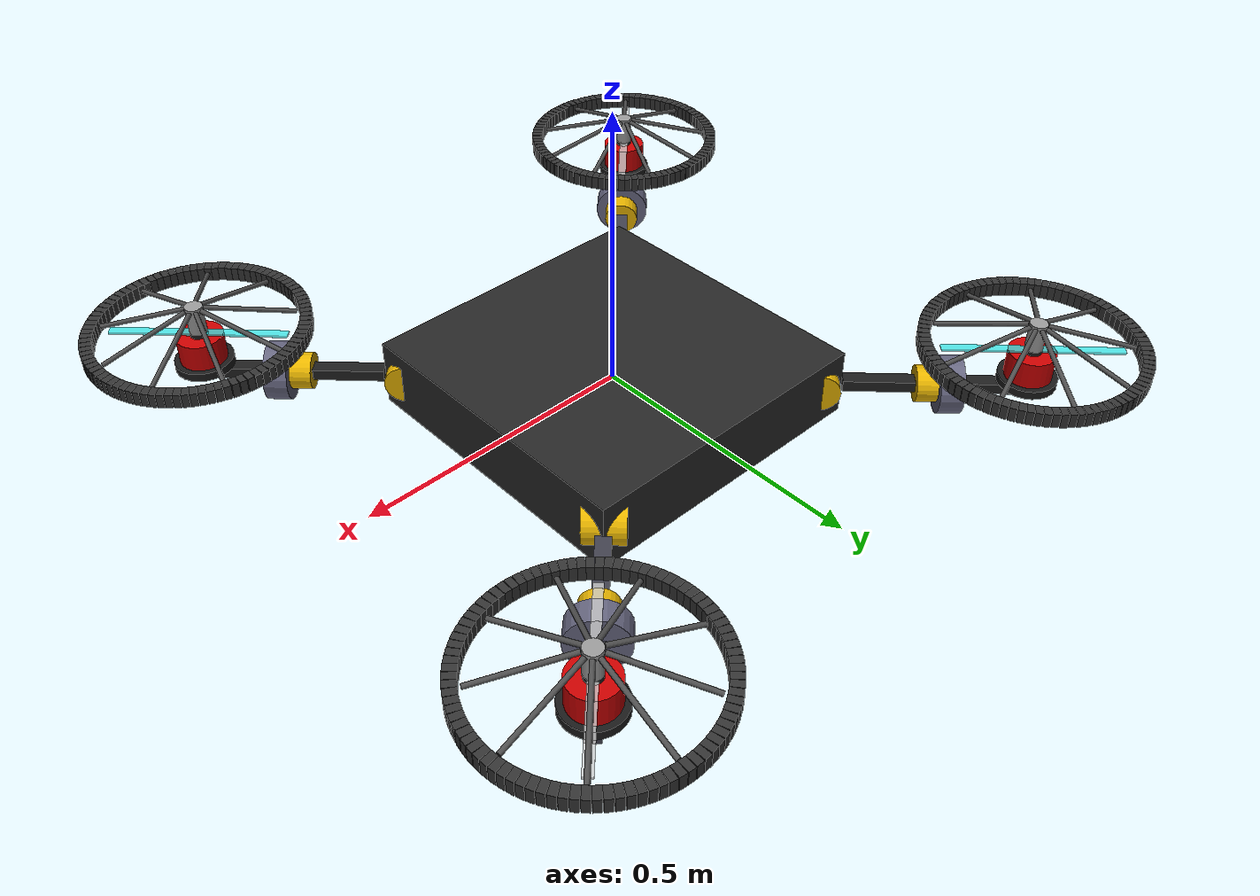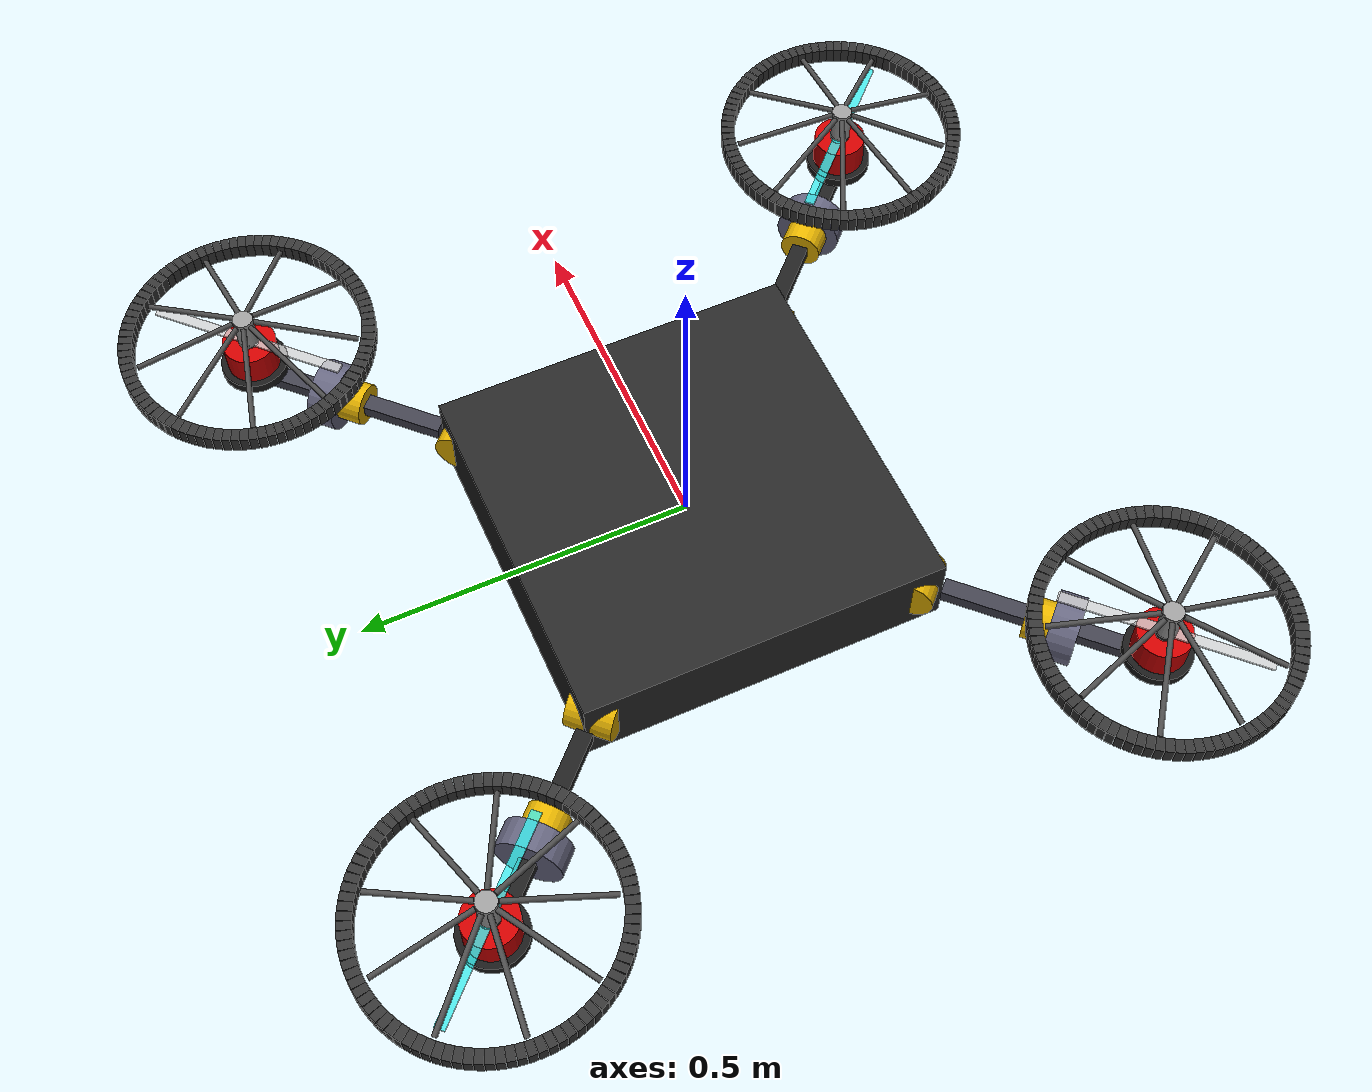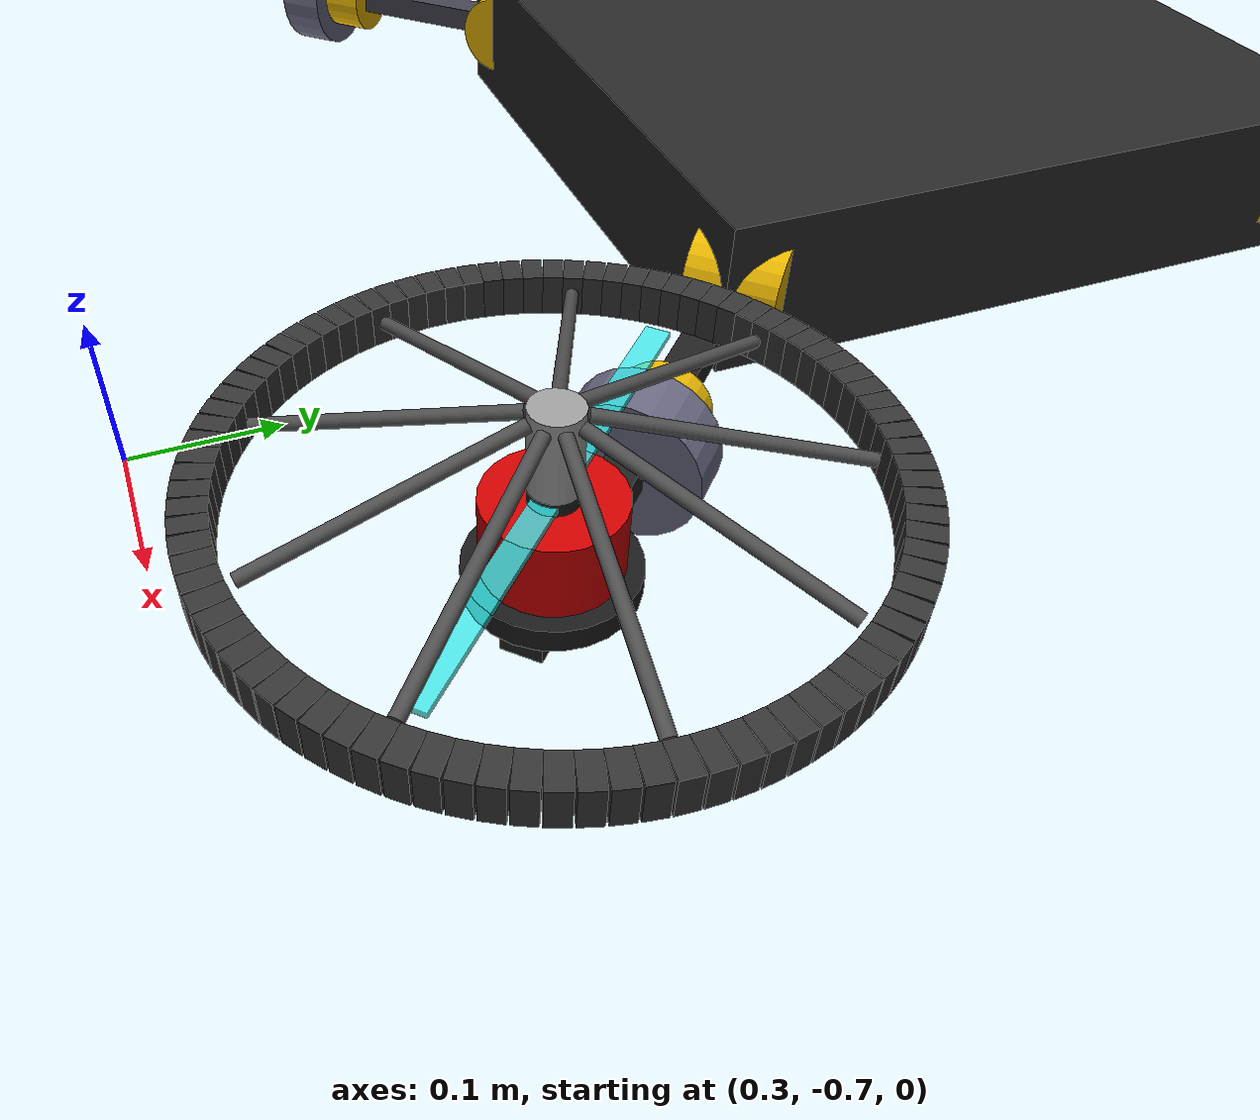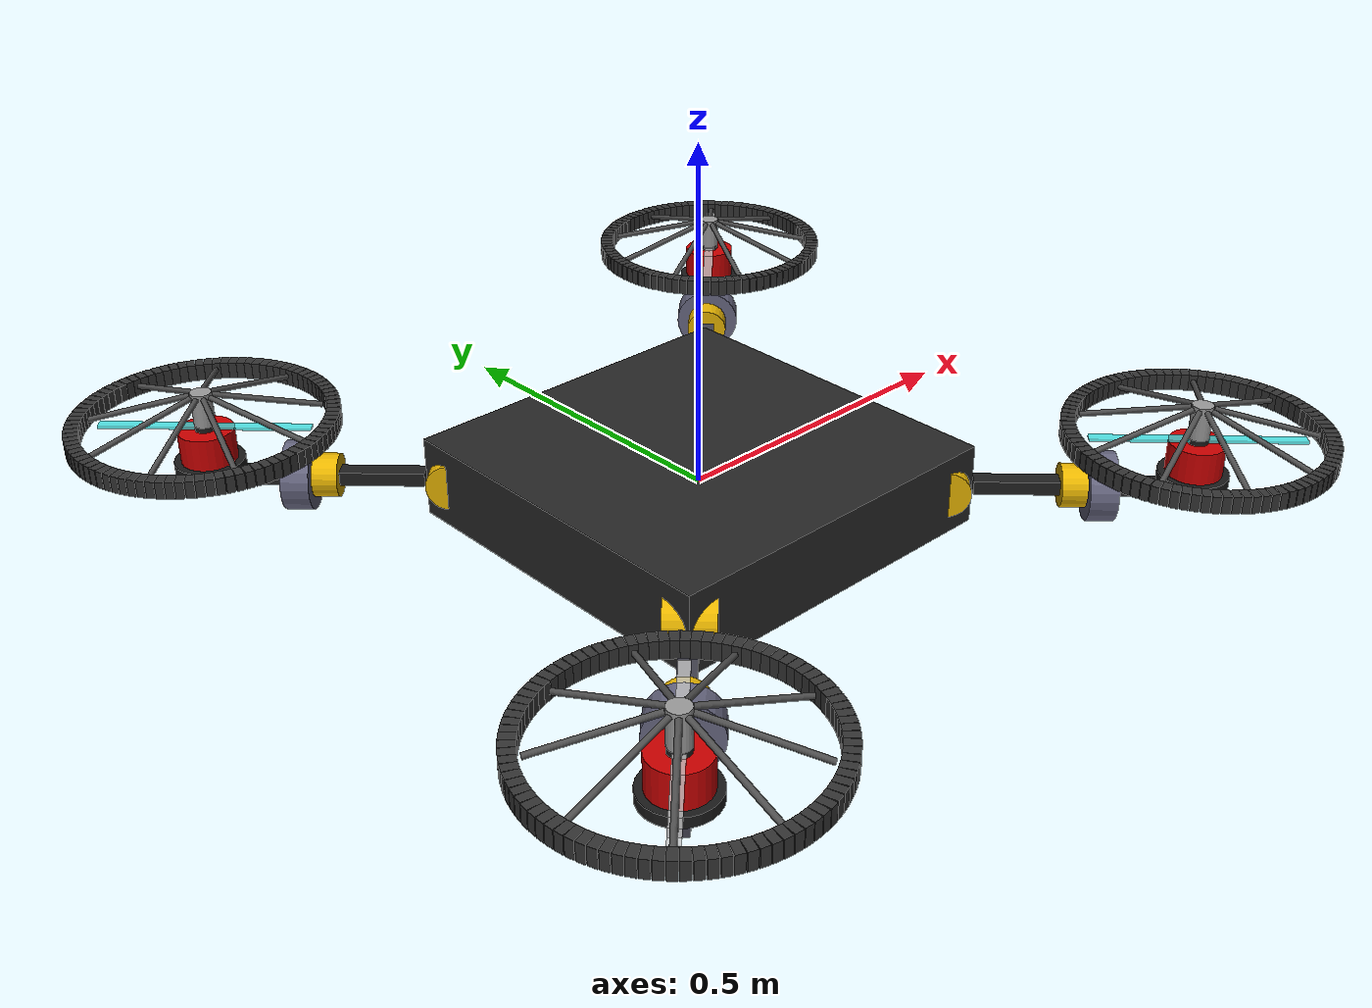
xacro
<?xml version="1.0"?>
<robot xmlns:xacro="http://www.ros.org/wiki/xacro" name="transformable_bot">
    <!-- Robot Properties -->
    <xacro:property name="body_length" value="0.55"/>
    <xacro:property name="body_width" value="0.55"/>
    <xacro:property name="body_height" value="0.12"/>

    <!-- Arm Properties -->
    <xacro:property name="arm_length" value="0.15"/>
    <xacro:property name="arm_width"  value="0.025"/>
    <xacro:property name="arm_height" value="0.020"/>
    <xacro:property name="arm_offset" value="0.35"/>

    <!-- PROPELLER PROPERTIES -->
    <xacro:property name="blade_length" value="0.152"/>
    <xacro:property name="blade_width" value="0.015"/>
    <xacro:property name="blade_thickness" value="0.004"/>
    <xacro:property name="hub_radius" value="0.015"/>
    <xacro:property name="hub_height" value="0.008"/>

    <!-- Servo Properties -->
    <xacro:property name="servo_radius" value="0.035"/>
    <xacro:property name="servo_length" value="0.070"/>

    <!-- Motor Properties -->
    <xacro:property name="motor_radius" value="0.040"/>
    <xacro:property name="motor_length" value="0.060"/>

    <!-- Gimbal Properties -->
    <xacro:property name="gimbal_range_x" value="1.5708"/>
    <xacro:property name="gimbal_range_y" value="1.5708"/>
    <xacro:property name="motor_gimbal_radius" value="0.050"/>
    <xacro:property name="motor_gimbal_height" value="0.040"/>

    <!-- FIXED Propeller Macro -->
    <xacro:macro name="propeller" params="name color">
        <!-- Propeller Hub -->
        <link name="${name}_hub">
            <visual>
                <origin xyz="0 0 0" rpy="0 0 0"/>
                <geometry>
                    <cylinder radius="${hub_radius}" length="${hub_height}"/>
                </geometry>
                <material name="hub_material"/>
            </visual>
            <collision>
                <origin xyz="0 0 0" rpy="0 0 0"/>
                <geometry>
                    <cylinder radius="${hub_radius}" length="${hub_height}"/>
                </geometry>
            </collision>
            <inertial>
                <origin xyz="0 0 0" rpy="0 0 0"/>
                <mass value="0.05"/>
                <inertia ixx="0.00001" ixy="0" ixz="0" iyy="0.00001" iyz="0" izz="0.00001"/>
            </inertial>
        </link>

        <!-- Blade 1 -->
        <link name="${name}_blade1">
            <visual>
                <origin xyz="0 0 0" rpy="0 0 0"/>
                <geometry>
                    <box size="${blade_length} ${blade_width} ${blade_thickness}"/>
                </geometry>
                <material name="${color}"/>
            </visual>
            <collision>
                <origin xyz="0 0 0" rpy="0 0 0"/>
                <geometry>
                    <box size="${blade_length} ${blade_width} ${blade_thickness}"/>
                </geometry>
            </collision>
            <inertial>
                <origin xyz="0 0 0" rpy="0 0 0"/>
                <mass value="0.002"/>
                <inertia ixx="0.000001" ixy="0" ixz="0" iyy="0.000001" iyz="0" izz="0.000001"/>
            </inertial>
        </link>

        <!-- Blade 2 -->
        <link name="${name}_blade2">
            <visual>
                <origin xyz="0 0 0" rpy="0 0 0"/>
                <geometry>
                    <box size="${blade_length} ${blade_width} ${blade_thickness}"/>
                </geometry>
                <material name="${color}"/>
            </visual>
            <collision>
                <origin xyz="0 0 0" rpy="0 0 0"/>
                <geometry>
                    <box size="${blade_length} ${blade_width} ${blade_thickness}"/>
                </geometry>
            </collision>
            <inertial>
                <origin xyz="0 0 0" rpy="0 0 0"/>
                <mass value="0.002"/>
                <inertia ixx="0.000001" ixy="0" ixz="0" iyy="0.000001" iyz="0" izz="0.000001"/>
            </inertial>
        </link>

        <!-- Joint positioning -->
        <joint name="${name}_hub_to_blade1" type="fixed">
            <parent link="${name}_hub"/>
            <child link="${name}_blade1"/>
            <origin xyz="${blade_length/2} 0 0" rpy="0 0 0"/>
        </joint>

        <joint name="${name}_hub_to_blade2" type="fixed">
            <parent link="${name}_hub"/>
            <child link="${name}_blade2"/>
            <origin xyz="${-blade_length/2} 0 0" rpy="0 0 ${pi}"/>
        </joint>
    </xacro:macro>

    <!-- Arm Assembly Macro -->
    <xacro:macro name="arm_assembly" params="name angle color offset_value_x offset_value_y">
        <!-- Y-axis Servo -->
        <link name="${name}_y_servo">
            <visual>
                <origin xyz="0 0 0" rpy="${pi/2} 0 0"/>
                <geometry>
                    <cylinder radius="${servo_radius}" length="${servo_length}"/>
                </geometry>
                <material name="servo_material"/>
            </visual>
            <collision>
                <origin xyz="0 0 0" rpy="${pi/2} 0 0"/>
                <geometry>
                    <cylinder radius="${servo_radius}" length="${servo_length}"/>
                </geometry>
            </collision>
            <inertial>
                <origin xyz="0 0 0" rpy="0 0 0"/>
                <mass value="0.08"/>
                <inertia ixx="0.00001" ixy="0" ixz="0" iyy="0.00001" iyz="0" izz="0.00001"/>
            </inertial>
        </link>

        <!-- Main Arm Link -->
        <link name="${name}_arm">
            <visual>
                <origin xyz="${arm_length/2} 0 0" rpy="0 0 0"/>
                <geometry>
                    <box size="${arm_length} ${arm_width} ${arm_height}"/>
                </geometry>
                <material name="${color}"/>
            </visual>
            <collision>
                <origin xyz="${arm_length/2} 0 0" rpy="0 0 0"/>
                <geometry>
                    <box size="${arm_length} ${arm_width} ${arm_height}"/>
                </geometry>
            </collision>
            <inertial>
                <origin xyz="${arm_length/2} 0 0" rpy="0 0 0"/>
                <mass value="0.2"/>
                <inertia ixx="0.001" ixy="0" ixz="0" iyy="0.001" iyz="0" izz="0.001"/>
            </inertial>
        </link>

        <!-- Base to Y-Servo -->
        <joint name="base_to_${name}_y_servo" type="fixed">
            <parent link="base_link"/>
            <child link="${name}_y_servo"/>
            <origin xyz="${(arm_offset * cos(angle)) + offset_value_x} ${(arm_offset * sin(angle)) + offset_value_y} 0" rpy="0 0 ${angle}"/>
        </joint>

        <!-- Y-Servo to Arm -->
        <joint name="${name}_y_servo_to_arm" type="revolute">
            <parent link="${name}_y_servo"/>
            <child link="${name}_arm"/>
            <origin xyz="${servo_length/2 + 0.005} 0 0" rpy="0 0 0"/>
            <axis xyz="0 1 0"/>
            <limit lower="0" upper="${gimbal_range_y}" effort="20" velocity="1.0"/>
            <dynamics damping="0.1" friction="0.05"/>
        </joint>
    </xacro:macro>

    <!-- COMPLETELY FIXED Motor Gimbal Macro -->
    <xacro:macro name="motor_gimbal" params="name arm_link color">
        <!-- X-axis Servo -->
        <link name="${name}_x_servo">
            <visual>
                <origin xyz="0 0 0" rpy="0 0 0"/>
                <geometry>
                    <cylinder radius="${servo_radius * 0.9}" length="${servo_length * 0.8}"/>
                </geometry>
                <material name="servo_material"/>
            </visual>
            <collision>
                <origin xyz="0 0 0" rpy="0 0 0"/>
                <geometry>
                    <cylinder radius="${servo_radius * 0.9}" length="${servo_length * 0.8}"/>
                </geometry>
            </collision>
            <inertial>
                <origin xyz="0 0 0" rpy="0 0 0"/>
                <mass value="0.06"/>
                <inertia ixx="0.00001" ixy="0" ixz="0" iyy="0.00001" iyz="0" izz="0.00001"/>
            </inertial>
        </link>

        <!-- Gimbal Base -->
        <link name="${name}_gimbal_base">
            <visual>
                <origin xyz="0 0 0" rpy="0 0 0"/>
                <geometry>
                    <cylinder radius="${motor_gimbal_radius}" length="${motor_gimbal_height}"/>
                </geometry>
                <material name="gimbal_material"/>
            </visual>
            <collision>
                <origin xyz="0 0 0" rpy="0 0 0"/>
                <geometry>
                    <cylinder radius="${motor_gimbal_radius}" length="${motor_gimbal_height}"/>
                </geometry>
            </collision>
            <inertial>
                <origin xyz="0 0 0" rpy="0 0 0"/>
                <mass value="0.05"/>
                <inertia ixx="0.00005" ixy="0" ixz="0" iyy="0.00005" iyz="0" izz="0.00008"/>
            </inertial>
        </link>

        <!-- Mini-Arm Extension -->
        <link name="${name}_extension">
            <visual>
                <origin xyz="${arm_length/2} 0 0" rpy="0 0 0"/>
                <geometry>
                    <box size="${arm_length} ${arm_width} ${arm_height}"/>
                </geometry>
                <material name="${color}"/>
            </visual>
            <collision>
                <origin xyz="${arm_length/2} 0 0" rpy="0 0 0"/>
                <geometry>
                    <box size="${arm_length} ${arm_width} ${arm_height}"/>
                </geometry>
            </collision>
            <inertial>
                <origin xyz="${arm_length/8} 0 0" rpy="0 0 0"/>
                <mass value="0.05"/>
                <inertia ixx="0.001" ixy="0" ixz="0" iyy="0.001" iyz="0" izz="0.001"/>
            </inertial>
        </link>

        <!-- Motor Hub-->
         <link name="${name}_motor_hub">
            <visual>
                <origin xyz="0 0 0" rpy="0 0 0"/>
                <geometry>
                    <cylinder radius="${5*motor_radius/4}" length="${motor_length/4}"/>
                </geometry>
                <material name="hub_material"/>
            </visual>
            <collision>
                <origin xyz="0 0 0" rpy="0 0 0"/>
                <geometry>
                    <cylinder radius="${5*motor_radius/4}" length="${motor_length/4}"/>
                </geometry>
            </collision>
            <inertial>
                <origin xyz="0 0 0" rpy="0 0 0"/>
                <mass value="0.05"/>
                <inertia ixx="0.001" ixy="0" ixz="0" iyy="0.001" iyz="0" izz="0.001"/>
            </inertial>
        </link>

        <!-- Motor -->
        <link name="${name}_motor">
            <visual>
                <origin xyz="0 0 0" rpy="0 0 0"/>
                <geometry>
                    <cylinder radius="${motor_radius}" length="${motor_length}"/>
                </geometry>
                <material name="motor_material"/>
            </visual>
            <collision>
                <origin xyz="0 0 0" rpy="0 0 0"/>
                <geometry>
                    <cylinder radius="${motor_radius}" length="${motor_length}"/>
                </geometry>
            </collision>
            <inertial>
                <origin xyz="0 0 0" rpy="0 0 0"/>
                <mass value="0.15"/>
                <inertia ixx="0.0001" ixy="0" ixz="0" iyy="0.0001" iyz="0" izz="0.0001"/>
            </inertial>
        </link>

        <!-- FIXED JOINT CHAIN -->
        <!-- 1. Arm to X-Servo -->
        <joint name="${arm_link}_to_${name}_x_servo" type="fixed">
            <parent link="${arm_link}"/>
            <child link="${name}_x_servo"/>
            <origin xyz="${arm_length} 0 0" rpy="0 ${pi/2} 0"/>
        </joint>

        <!-- 2. X-Servo to Gimbal -->
        <joint name="${name}_x_servo_to_gimbal" type="revolute">
            <parent link="${name}_x_servo"/>
            <child link="${name}_gimbal_base"/>
            <origin xyz="0 0 ${servo_length * 0.4}" rpy="0 0 0"/>
            <axis xyz="0 0 1"/>
            <limit lower="-${gimbal_range_x}" upper="${gimbal_range_x}" effort="20" velocity="1.0"/>
            <dynamics damping="0.1" friction="0.05"/>
        </joint>

        <!-- 3. Gimbal to Extension -->
        <joint name="${name}_gimbal_to_extension" type="fixed">
            <parent link="${name}_gimbal_base"/>
            <child link="${name}_extension"/>
            <origin xyz="0 0 ${motor_gimbal_height/2}" rpy="0 -${pi/2} 0"/>
        </joint>

        <!-- 4. Extension to motor hub  -->
        <joint name="${name}_extension_to_motor_hub" type="fixed">
            <parent link="${name}_extension"/>
            <child link="${name}_motor_hub"/>
            <origin xyz="${arm_length - motor_radius} 0 ${arm_height/2 + motor_length/8}" rpy="0 0 0"/>
        </joint>

        <!-- 5. Extension to Motor -->
        <joint name="${name}_motor_hub_to_motor" type="continuous">
            <parent link="${name}_motor_hub"/>
            <child link="${name}_motor"/>
            <origin xyz="0 0 ${arm_height/2 + motor_length/4}" rpy="0 0 0"/>
            <axis xyz="0 0 1"/>
        </joint>
    </xacro:macro>

    <!-- Material Definitions -->
    <material name="charcoal">
        <color rgba="0.15 0.15 0.15 1.0"/>
    </material>
    <material name="dark_steel">
        <color rgba="0.25 0.25 0.3 1.0"/>
    </material>
    <material name="carbon_fiber">
        <color rgba="0.12 0.12 0.12 1.0"/>
    </material>
    <material name="propeller_cw">
        <color rgba="0.2 0.9 0.9 0.8"/>
    </material>
    <material name="propeller_ccw">
        <color rgba="0.8 0.8 0.8 0.8"/>
    </material>
    <material name="motor_material">
        <color rgba="0.8 0.0 0.0 1.0"/>
    </material>
    <material name="servo_material">
        <color rgba="0.9 0.7 0.0 1.0"/>
    </material>
    <material name="gimbal_material">
        <color rgba="0.4 0.4 0.5 1.0"/>
    </material>
    <material name="hub_material">
        <color rgba="0.1 0.1 0.1 1.0"/>
    </material>

    <!-- Main Body -->
    <link name="base_link">
        <visual>
            <origin xyz="0 0 0" rpy="0 0 0"/>
            <geometry>
                <box size="${body_length} ${body_width} ${body_height}"/>
            </geometry>
            <material name="charcoal"/>
        </visual>
        <collision>
            <origin xyz="0 0 0" rpy="0 0 0"/>
            <geometry>
                <box size="${body_length} ${body_width} ${body_height}"/>
            </geometry>
        </collision>
        <inertial>
            <origin xyz="0 0 0" rpy="0 0 0"/>
            <mass value="2.0"/>
            <inertia ixx="0.01" ixy="0" ixz="0" iyy="0.01" iyz="0" izz="0.01"/>
        </inertial>
    </link>

    <!-- Create Arms -->
    <xacro:arm_assembly name="front_right" angle="${pi/4}" color="dark_steel" offset_value_x = "0.0" offset_value_y = "0.0"/>
    <xacro:arm_assembly name="back_right" angle="${3*pi/4}" color="carbon_fiber" offset_value_x = "0.0" offset_value_y = "0.0"/>
    <xacro:arm_assembly name="back_left" angle="${5*pi/4}" color="dark_steel" offset_value_x = "0.0" offset_value_y = "0.0"/>
    <xacro:arm_assembly name="front_left" angle="${7*pi/4}" color="carbon_fiber" offset_value_x = "0.0" offset_value_y = "0.0"/>

    <!-- Motor Gimbals -->
    <xacro:motor_gimbal name="front_right" arm_link="front_right_arm" color="dark_steel"/>
    <xacro:motor_gimbal name="back_right" arm_link="back_right_arm" color="carbon_fiber"/>
    <xacro:motor_gimbal name="back_left" arm_link="back_left_arm" color="dark_steel"/>
    <xacro:motor_gimbal name="front_left" arm_link="front_left_arm" color="carbon_fiber"/>

    <!-- Propellers -->
    <xacro:propeller name="propeller_front_right" color="propeller_ccw"/>
    <joint name="front_right_motor_to_propeller" type="fixed">
        <parent link="front_right_motor"/>
        <child link="propeller_front_right_hub"/>
        <origin xyz="0 0 ${motor_length/2 + hub_height/2}" rpy="0 0 0"/>
        <axis xyz="0 0 1"/>
        <dynamics damping="0.01" friction="0.001"/>
    </joint>

    <xacro:propeller name="propeller_back_right" color="propeller_cw"/>
    <joint name="back_right_motor_to_propeller" type="fixed">
        <parent link="back_right_motor"/>
        <child link="propeller_back_right_hub"/>
        <origin xyz="0 0 ${motor_length/2 + hub_height/2}" rpy="0 0 0"/>
        <axis xyz="0 0 1"/>
        <dynamics damping="0.01" friction="0.001"/>
    </joint>

    <xacro:propeller name="propeller_back_left" color="propeller_ccw"/>
    <joint name="back_left_motor_to_propeller" type="fixed">
        <parent link="back_left_motor"/>
        <child link="propeller_back_left_hub"/>
        <origin xyz="0 0 ${motor_length/2 + hub_height/2}" rpy="0 0 0"/>
        <axis xyz="0 0 1"/>
        <dynamics damping="0.01" friction="0.001"/>
    </joint>

    <xacro:propeller name="propeller_front_left" color="propeller_cw"/>
    <joint name="front_left_motor_to_propeller" type="fixed">
        <parent link="front_left_motor"/>
        <child link="propeller_front_left_hub"/>
        <origin xyz="0 0 ${motor_length/2 + hub_height/2}" rpy="0 0 0"/>
        <axis xyz="0 0 1"/>
        <dynamics damping="0.01" friction="0.001"/>
    </joint>

    <xacro:include filename="$(find transformable_bot)/urdf/ring_system.urdf.xacro"/>

 <xacro:include filename="$(find transformable_bot)/urdf/ring_attached.urdf.xacro"/>

  <!-- Include Mode Switch Plugin Configuration -->
  <xacro:include filename="$(find transformable_bot)/urdf/mode_switch_plugin.urdf.xacro"/>
  <!-- Include Servo and Motor Plugin Configuration -->
  <xacro:include filename="$(find transformable_bot)/urdf/servo_motor_plugins.urdf.xacro"/>

  <!-- attach elevated ring+rods to each propeller hub -->
  <!-- here offset_z="0.05" lifts the ring about 5 cm above the propeller -->
  <xacro:ring_attached
    name="ring_attach_front_right"
    parent_link="propeller_front_right_hub"
    offset_x="0" offset_y="0" offset_z="0.0"/>

  <xacro:ring_attached
    name="ring_attach_front_left"
    parent_link="propeller_front_left_hub"
    offset_x="0" offset_y="0" offset_z="${hub_height/2}"/>

  <xacro:ring_attached
    name="ring_attach_back_right"
    parent_link="propeller_back_right_hub"
    offset_x="0" offset_y="0" offset_z="${hub_height/2}"/>

  <xacro:ring_attached
    name="ring_attach_back_left"
    parent_link="propeller_back_left_hub"
    offset_x="0" offset_y="0" offset_z="${hub_height/2}"/>

</robot>

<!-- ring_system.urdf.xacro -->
<robot xmlns:xacro="http://www.ros.org/wiki/xacro">

  <!-- ENHANCED RING SYSTEM - 90 SEGMENTS WITH MACRO FUNCTIONS -->
  <xacro:macro name="ring_system" params="name parent_link offset_x offset_y offset_z">

    <!-- Ring radius = 0.18m-->
    <!-- STEP SIZE: 360° / 90 = 4° in radians -->
    <xacro:property name="angle_step" value="0.0698132"/>

    <!-- UNIQUE MATERIAL FOR ALL RING SEGMENTS -->
    <material name="${name}_ring_material">
      <color rgba="0.2 0.2 0.2 1.0"/>
    </material>

    <!-- CENTRAL HUB (INVISIBLE CONNECTION) -->
    <link name="${name}_hub">
      <inertial>
        <mass value="0.015"/>
        <inertia ixx="0.0002" ixy="0" ixz="0"
                 iyy="0.0002" iyz="0" izz="0.0002"/>
      </inertial>
    </link>

    <!-- MACRO TO DEFINE ONE RING SEGMENT + ITS FIXED JOINT -->
    <xacro:macro name="ring_segment" params="segment_num angle">
      <xacro:property name="x_pos" value="${0.18 * cos(angle)}"/>
      <xacro:property name="y_pos" value="${0.18 * sin(angle)}"/>

      <link name="${name}_ring_seg_${segment_num}">
        <visual>
          <geometry>
            <box size="0.02 0.012 0.025"/>
          </geometry>
          <material name="${name}_ring_material"/>
        </visual>
        <collision>
          <geometry>
            <box size="0.02 0.012 0.025"/>
          </geometry>
        </collision>
        <inertial>
          <mass value="0.001"/>
          <inertia ixx="0.000002" ixy="0" ixz="0"
                   iyy="0.000002" iyz="0" izz="0.000002"/>
        </inertial>
      </link>

      <joint name="${name}_ring_seg_${segment_num}_joint" type="fixed">
        <parent link="${name}_hub"/>
        <child  link="${name}_ring_seg_${segment_num}"/>
        <origin xyz="${x_pos} ${y_pos} 0" rpy="0 0 ${angle}"/>
      </joint>
    </xacro:macro>

    <!-- HUB-TO-PARENT JOINT -->
    <joint name="${name}_hub_joint" type="fixed">
      <parent link="${parent_link}"/>
      <child  link="${name}_hub"/>
      <origin xyz="${offset_x} ${offset_y} ${offset_z}" rpy="0 0 0"/>
    </joint>

    <!-- CREATE 90 RING SEGMENTS AT 4° INTERVALS -->
    <xacro:ring_segment segment_num="1"  angle="${angle_step * 0}"/>
    <xacro:ring_segment segment_num="2"  angle="${angle_step * 1}"/>
    <xacro:ring_segment segment_num="3"  angle="${angle_step * 2}"/>
    <xacro:ring_segment segment_num="4"  angle="${angle_step * 3}"/>
    <xacro:ring_segment segment_num="5"  angle="${angle_step * 4}"/>
    <xacro:ring_segment segment_num="6"  angle="${angle_step * 5}"/>
    <xacro:ring_segment segment_num="7"  angle="${angle_step * 6}"/>
    <xacro:ring_segment segment_num="8"  angle="${angle_step * 7}"/>
    <xacro:ring_segment segment_num="9"  angle="${angle_step * 8}"/>
    <xacro:ring_segment segment_num="10" angle="${angle_step * 9}"/>
    <xacro:ring_segment segment_num="11" angle="${angle_step * 10}"/>
    <xacro:ring_segment segment_num="12" angle="${angle_step * 11}"/>
    <xacro:ring_segment segment_num="13" angle="${angle_step * 12}"/>
    <xacro:ring_segment segment_num="14" angle="${angle_step * 13}"/>
    <xacro:ring_segment segment_num="15" angle="${angle_step * 14}"/>
    <xacro:ring_segment segment_num="16" angle="${angle_step * 15}"/>
    <xacro:ring_segment segment_num="17" angle="${angle_step * 16}"/>
    <xacro:ring_segment segment_num="18" angle="${angle_step * 17}"/>
    <xacro:ring_segment segment_num="19" angle="${angle_step * 18}"/>
    <xacro:ring_segment segment_num="20" angle="${angle_step * 19}"/>
    <xacro:ring_segment segment_num="21" angle="${angle_step * 20}"/>
    <xacro:ring_segment segment_num="22" angle="${angle_step * 21}"/>
    <xacro:ring_segment segment_num="23" angle="${angle_step * 22}"/>
    <xacro:ring_segment segment_num="24" angle="${angle_step * 23}"/>
    <xacro:ring_segment segment_num="25" angle="${angle_step * 24}"/>
    <xacro:ring_segment segment_num="26" angle="${angle_step * 25}"/>
    <xacro:ring_segment segment_num="27" angle="${angle_step * 26}"/>
    <xacro:ring_segment segment_num="28" angle="${angle_step * 27}"/>
    <xacro:ring_segment segment_num="29" angle="${angle_step * 28}"/>
    <xacro:ring_segment segment_num="30" angle="${angle_step * 29}"/>
    <xacro:ring_segment segment_num="31" angle="${angle_step * 30}"/>
    <xacro:ring_segment segment_num="32" angle="${angle_step * 31}"/>
    <xacro:ring_segment segment_num="33" angle="${angle_step * 32}"/>
    <xacro:ring_segment segment_num="34" angle="${angle_step * 33}"/>
    <xacro:ring_segment segment_num="35" angle="${angle_step * 34}"/>
    <xacro:ring_segment segment_num="36" angle="${angle_step * 35}"/>
    <xacro:ring_segment segment_num="37" angle="${angle_step * 36}"/>
    <xacro:ring_segment segment_num="38" angle="${angle_step * 37}"/>
    <xacro:ring_segment segment_num="39" angle="${angle_step * 38}"/>
    <xacro:ring_segment segment_num="40" angle="${angle_step * 39}"/>
    <xacro:ring_segment segment_num="41" angle="${angle_step * 40}"/>
    <xacro:ring_segment segment_num="42" angle="${angle_step * 41}"/>
    <xacro:ring_segment segment_num="43" angle="${angle_step * 42}"/>
    <xacro:ring_segment segment_num="44" angle="${angle_step * 43}"/>
    <xacro:ring_segment segment_num="45" angle="${angle_step * 44}"/>
    <xacro:ring_segment segment_num="46" angle="${angle_step * 45}"/>
    <xacro:ring_segment segment_num="47" angle="${angle_step * 46}"/>
    <xacro:ring_segment segment_num="48" angle="${angle_step * 47}"/>
    <xacro:ring_segment segment_num="49" angle="${angle_step * 48}"/>
    <xacro:ring_segment segment_num="50" angle="${angle_step * 49}"/>
    <xacro:ring_segment segment_num="51" angle="${angle_step * 50}"/>
    <xacro:ring_segment segment_num="52" angle="${angle_step * 51}"/>
    <xacro:ring_segment segment_num="53" angle="${angle_step * 52}"/>
    <xacro:ring_segment segment_num="54" angle="${angle_step * 53}"/>
    <xacro:ring_segment segment_num="55" angle="${angle_step * 54}"/>
    <xacro:ring_segment segment_num="56" angle="${angle_step * 55}"/>
    <xacro:ring_segment segment_num="57" angle="${angle_step * 56}"/>
    <xacro:ring_segment segment_num="58" angle="${angle_step * 57}"/>
    <xacro:ring_segment segment_num="59" angle="${angle_step * 58}"/>
    <xacro:ring_segment segment_num="60" angle="${angle_step * 59}"/>
    <xacro:ring_segment segment_num="61" angle="${angle_step * 60}"/>
    <xacro:ring_segment segment_num="62" angle="${angle_step * 61}"/>
    <xacro:ring_segment segment_num="63" angle="${angle_step * 62}"/>
    <xacro:ring_segment segment_num="64" angle="${angle_step * 63}"/>
    <xacro:ring_segment segment_num="65" angle="${angle_step * 64}"/>
    <xacro:ring_segment segment_num="66" angle="${angle_step * 65}"/>
    <xacro:ring_segment segment_num="67" angle="${angle_step * 66}"/>
    <xacro:ring_segment segment_num="68" angle="${angle_step * 67}"/>
    <xacro:ring_segment segment_num="69" angle="${angle_step * 68}"/>
    <xacro:ring_segment segment_num="70" angle="${angle_step * 69}"/>
    <xacro:ring_segment segment_num="71" angle="${angle_step * 70}"/>
    <xacro:ring_segment segment_num="72" angle="${angle_step * 71}"/>
    <xacro:ring_segment segment_num="73" angle="${angle_step * 72}"/>
    <xacro:ring_segment segment_num="74" angle="${angle_step * 73}"/>
    <xacro:ring_segment segment_num="75" angle="${angle_step * 74}"/>
    <xacro:ring_segment segment_num="76" angle="${angle_step * 75}"/>
    <xacro:ring_segment segment_num="77" angle="${angle_step * 76}"/>
    <xacro:ring_segment segment_num="78" angle="${angle_step * 77}"/>
    <xacro:ring_segment segment_num="79" angle="${angle_step * 78}"/>
    <xacro:ring_segment segment_num="80" angle="${angle_step * 79}"/>
    <xacro:ring_segment segment_num="81" angle="${angle_step * 80}"/>
    <xacro:ring_segment segment_num="82" angle="${angle_step * 81}"/>
    <xacro:ring_segment segment_num="83" angle="${angle_step * 82}"/>
    <xacro:ring_segment segment_num="84" angle="${angle_step * 83}"/>
    <xacro:ring_segment segment_num="85" angle="${angle_step * 84}"/>
    <xacro:ring_segment segment_num="86" angle="${angle_step * 85}"/>
    <xacro:ring_segment segment_num="87" angle="${angle_step * 86}"/>
    <xacro:ring_segment segment_num="88" angle="${angle_step * 87}"/>
    <xacro:ring_segment segment_num="89" angle="${angle_step * 88}"/>
    <xacro:ring_segment segment_num="90" angle="${angle_step * 89}"/>

  </xacro:macro>

</robot>

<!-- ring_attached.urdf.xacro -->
<robot xmlns:xacro="http://www.ros.org/wiki/xacro">

  <!-- Include the base ring_system macro -->
  <xacro:include filename="$(find transformable_bot)/urdf/ring_system.urdf.xacro"/>

  <xacro:property name="rod_length" value="0.155"/>
  <xacro:property name="rod_radius" value="0.004"/>
  <xacro:property name="rod_tilt" value="1.309"/>
  <xacro:property name="rod_offset" value="0.0058"/>

 <xacro:property name="hub_radius" value="0.015"/>
  <xacro:property name="hub_length" value="0.05"/>

  <!-- RING + 9 RODS ATTACHMENT AT ELEVATED HUB -->
  <xacro:macro name="ring_attached" params="name parent_link offset_x offset_y offset_z">

    <!-- Materials -->
    <material name="${name}_hub9_material">
      <color rgba="0.6 0.6 0.6 1.0"/>
    </material>
    <material name="${name}_rod_material">
      <color rgba="0.3 0.3 0.3 1.0"/>
    </material>

    <!-- 9-rods hub with visual cylinder -->
    <link name="${name}_hub_9rods">
      <visual>
        <origin xyz="0 0 ${hub_length/2}" rpy="0 0 0"/>
        <geometry>
          <cylinder radius="${hub_radius}" length="${hub_length}"/>
        </geometry>
        <material name="${name}_hub9_material"/>
      </visual>
      <collision>
        <origin xyz="0 0 ${hub_length/2}" rpy="0 0 0"/>
        <geometry>
          <cylinder radius="${hub_radius}" length="${hub_length}"/>
        </geometry>
      </collision>
      <inertial>
        <mass value="0.01"/>
        <inertia ixx="0.0001" ixy="0" ixz="0"
                 iyy="0.0001" iyz="0" izz="0.0001"/>
      </inertial>
    </link>

    <!-- Fixed joint to lift hub above propeller -->
    <joint name="${name}_hub_9rods_joint" type="continuous">
      <parent link="${parent_link}"/>
      <child  link="${name}_hub_9rods"/>
      <origin xyz="${offset_x} ${offset_y} ${offset_z}" rpy="0 0 0"/>
      <axis xyz="0 0 1"/>
      <dynamics damping="0.0" friction="0.0"/>
    </joint>

    <!-- 360° / 9 rods = 40° step in radians -->
    <xacro:property name="rod_angle_step" value="0.698132"/>

    <!-- Macro: one rod angled into hub -->
    <xacro:macro name="rod" params="i angle">
      <!-- radial end position -->
      <xacro:property name="x_r" value="${0.18 * cos(angle)}"/>
      <xacro:property name="y_r" value="${0.18 * sin(angle)}"/>

      <!-- rod link (cylinder) -->
      <link name="${name}_rod_${i}">
        <visual>
          <origin xyz="0 0 ${9*rod_length/16 + rod_offset}" rpy="0 0 0"/>
          <geometry>
            <cylinder radius="${rod_radius}" length="${rod_length}"/>
          </geometry>
          <material name="${name}_rod_material"/>
        </visual>
        <collision>
          <origin xyz="0 0 ${9*rod_length/16 + rod_offset}" rpy="0 0 0"/>
          <geometry>
            <cylinder radius="${rod_radius}" length="${rod_length}"/>
          </geometry>
        </collision>
        <inertial>
          <mass value="0.0005"/>
          <inertia ixx="0.0000005" ixy="0" ixz="0"
                   iyy="0.0000005" iyz="0" izz="0.0000005"/>
        </inertial>
      </link>

      <!-- joint rotates rod into radial plane and positions at hub center -->
      <joint name="${name}_rod_${i}_joint" type="fixed">
        <parent link="${name}_hub_9rods"/>
        <child  link="${name}_rod_${i}"/>
        <!-- rotate X axis → Y (1.5708), then yaw by angle -->
        <origin xyz="${x_r} ${y_r} 0" rpy="0 -${rod_tilt} ${angle}"/>
      </joint>
    </xacro:macro>

    <!-- Create 9 rods at 40° increments -->
    <xacro:rod i="1" angle="${rod_angle_step * 0}"/>
    <xacro:rod i="2" angle="${rod_angle_step * 1}"/>
    <xacro:rod i="3" angle="${rod_angle_step * 2}"/>
    <xacro:rod i="4" angle="${rod_angle_step * 3}"/>
    <xacro:rod i="5" angle="${rod_angle_step * 4}"/>
    <xacro:rod i="6" angle="${rod_angle_step * 5}"/>
    <xacro:rod i="7" angle="${rod_angle_step * 6}"/>
    <xacro:rod i="8" angle="${rod_angle_step * 7}"/>
    <xacro:rod i="9" angle="${rod_angle_step * 8}"/>

    <!-- Attach the 90-segment ring at the same elevated hub -->
    <xacro:ring_system
      name="${name}_ring"
      parent_link="${name}_hub_9rods"
      offset_x="0" offset_y="0" offset_z="0"/>

  </xacro:macro>
</robot>
